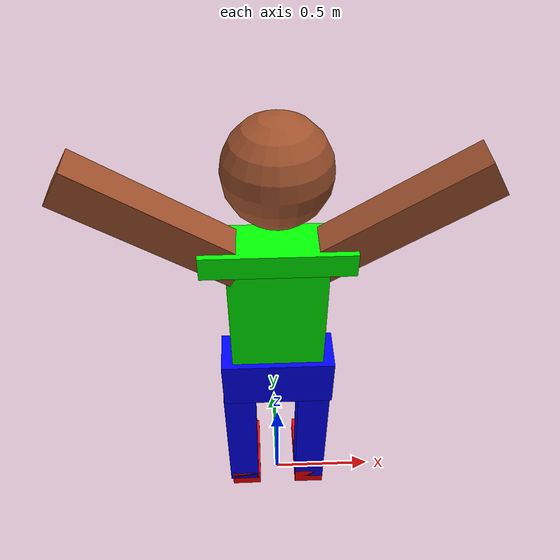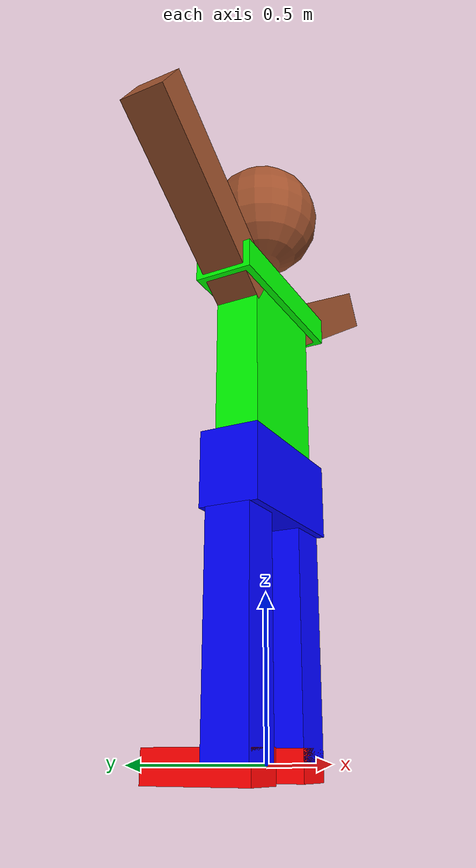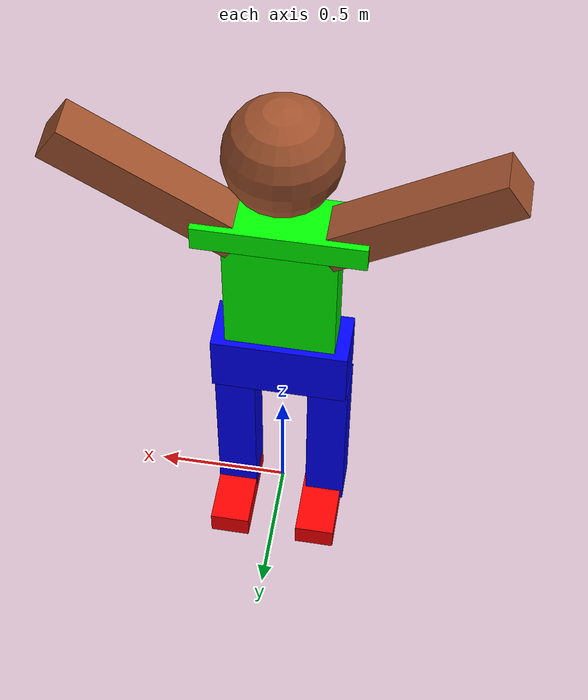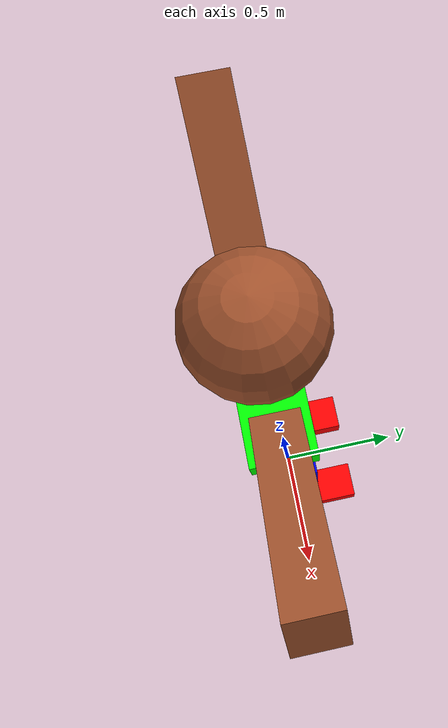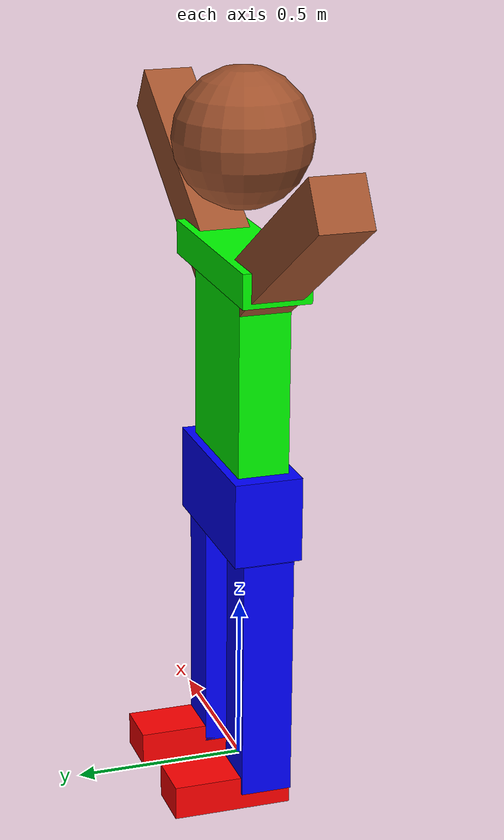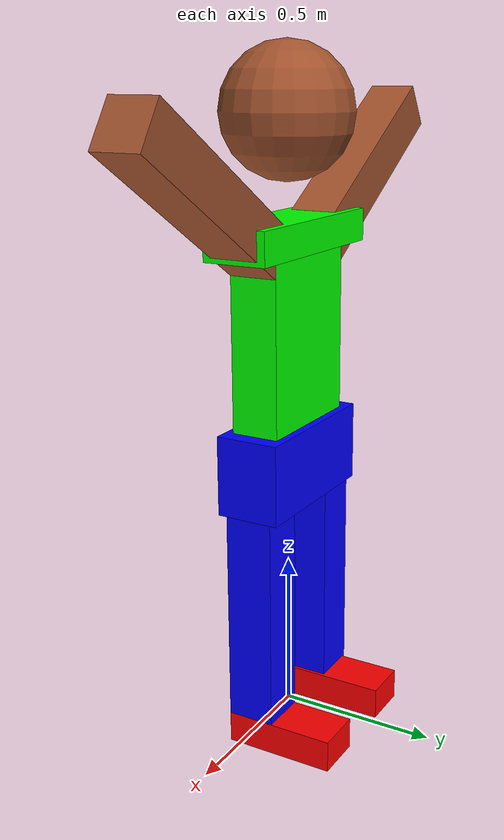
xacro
<?xml version="1.0"?>
 <robot name="human" xmlns:xacro="http://www.ros.org/wiki/xacro">

<!-- main body  -->
  <link name="main_body">
   <visual>
<origin xyz="0 0 1.2" rpy="0 0 0" />
    <geometry>
     <box size="0.4 0.15 0.7"/>
    </geometry>
   <material name="green">
   <color rgba="0 1 0 1"/>
   </material>
   </visual>

<!--main body collision,mass and inertia -->
 <collision>
   <origin xyz="0 0 1.2" rpy="0 0 0"/>
   <geometry>
     <box size="0.43 0.18 0.73"/>
   </geometry>
  </collision>
  <inertial>
  <mass value="40"/>
  <inertia ixx="0.4" ixy="0.0" ixz="0.0" iyy="0.4" iyz="0.0" izz="0.2"/>
  </inertial>
  </link>

 <!-- head  -->
  <link name="head">
   <visual>
<origin xyz="0 0 1.9" rpy="0 0 0" />
    <geometry>
     <sphere radius="0.2"/>
    </geometry>
   <material name="siena">
   <color rgba="0.6274 0.3215 0.1764 1"/>
   </material>
   </visual>
 </link>
<joint name="humans_head" type="fixed">
   <parent link="main_body"/>
   <child link="head"/>
   <origin xyz="0 0 0"/>
   </joint>

 <!-- legs base   -->
  <link name="legs_base">
   <visual>
<origin xyz="0 0 0.85" rpy="0 0 0" />
    <geometry>
     <box size="0.5 0.20 -0.25"/>
    </geometry>
    <material name="blue">
   <color rgba="0 0 1 1"/>
   </material>
   </visual>
 </link>
<joint name="humans_legs_base" type="fixed">
   <parent link="main_body"/>
   <child link="legs_base"/>
   <origin xyz="0 0 0"/>
   </joint>

<!-- right leg  -->
  <link name="right_leg">
   <visual>
<origin xyz="0.17 0 0.3625" rpy="0 0 0" />
    <geometry>
     <box size="0.15 0.15 0.725 "/>
    </geometry>
    <material name="blue">
   <color rgba="0 0 1 1"/>
   </material>
   </visual>
  </link>
<joint name="humans_right_leg" type="fixed">
   <parent link="main_body"/>
   <child link="right_leg"/>
   <origin xyz="0 0 0"/>
   </joint>

<!-- left leg  -->
  <link name="left_leg">
   <visual>
<origin xyz="-0.18 0 0.3625" rpy="0 0 0" />
    <geometry>
     <box size="0.15 0.15 0.725"/>
    </geometry>
   <material name="blue">
   <color rgba="0 0 1 1"/>
   </material>
   </visual>
 </link>
<joint name="humans_left_leg" type="fixed">
   <parent link="main_body"/>
   <child link="left_leg"/>
   <origin xyz="0 0 0"/>
   </joint>

<!-- hands base   -->
  <link name="hands_base">
   <visual>
<origin xyz="0 0 1.55" rpy="0 0 0" />
    <geometry>
     <box size="0.6 0.20 -0.10"/>
    </geometry>
    <material name="green">
   <color rgba="0 1 0 1"/>
   </material>
   </visual>
 </link>
<joint name="humans_hands_base" type="fixed">
   <parent link="main_body"/>
   <child link="hands_base"/>
   <origin xyz="0 0 0"/>
   </joint>

<!-- right hand  -->
  <link name="right_hand">
   <visual>
<origin xyz="0.45 0 1.70" rpy="0 1 0" />
    <geometry>
     <box size="0.15 0.15 0.725 "/>
    </geometry>
    <material name="siena">
   <color rgba="0.6274 0.3215 0.1764 1"/>
   </material>
   </visual>
 </link>
<joint name="humans_right_hand" type="fixed">
   <parent link="main_body"/>
   <child link="right_hand"/>
   <origin xyz="0 0 0"/>
   </joint>

<!-- left hand  -->
  <link name="left_hand">
   <visual>
<origin xyz="-0.45 0 1.70" rpy="0 -1 0" />
    <geometry>
     <box size="0.15 0.15 0.725 "/>
    </geometry>
    <material name="siena">
   <color rgba="0.6274 0.3215 0.1764 1"/>
   </material>
   </visual>
 </link>
<joint name="humans_left_hand" type="fixed">
   <parent link="main_body"/>
   <child link="left_hand"/>
   <origin xyz="0 0 0"/>
   </joint>

<!-- right shoe  -->
  <link name="right_shoe">
   <visual>
<origin xyz="0.17 0.1 0" rpy="0 0 0" />
    <geometry>
     <box size="0.15 0.35 0.10 "/>
    </geometry>
    <material name="red">
   <color rgba="1 0 0 1"/>
   </material>
   </visual>
</link>
<joint name="humans_right_shoe" type="fixed">
   <parent link="main_body"/>
   <child link="right_shoe"/>
   <origin xyz="0 0 0"/>
   </joint>

<!-- left shoe  -->
  <link name="left_shoe">
   <visual>
<origin xyz="-0.17 0.1 0" rpy="0 0 0" />
    <geometry>
     <box size="0.15 0.35 0.10 "/>
    </geometry>
    <material name="red">
   <color rgba="1 0 0 1"/>
   </material>
   </visual>
  </link>
<joint name="humans_left_shoe" type="fixed">
   <parent link="main_body"/>
   <child link="left_shoe"/>
   <origin xyz="0 0 0"/>
   </joint>

<gazebo reference="main_body">
 <material>Gazebo/Green</material>
</gazebo>
<gazebo reference="legs_base">
 <material>Gazebo/Blue</material>
</gazebo>
<gazebo reference="head">
<material>Gazebo/Brown</material>
</gazebo>
<gazebo reference="right_leg">
 <material>Gazebo/Blue</material>
</gazebo>
<gazebo reference="left_leg">
 <material>Gazebo/Blue</material>
</gazebo>
<gazebo reference="right_hand">
 <material>Gazebo/Brown</material>
</gazebo>
<gazebo reference="left_hand">
 <material>Gazebo/Brown</material>
</gazebo>
<gazebo reference="right_shoe">
 <material>Gazebo/Red</material>
</gazebo>
<gazebo reference="left_shoe">
 <material>Gazebo/Red</material>
</gazebo>
<gazebo reference="hands_base">
 <material>Gazebo/Green</material>
</gazebo>

</robot>
